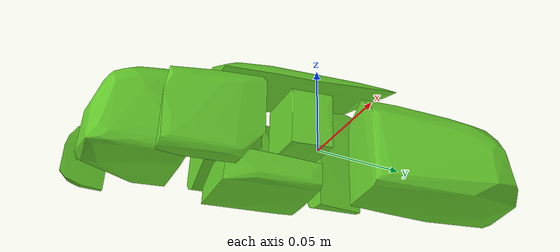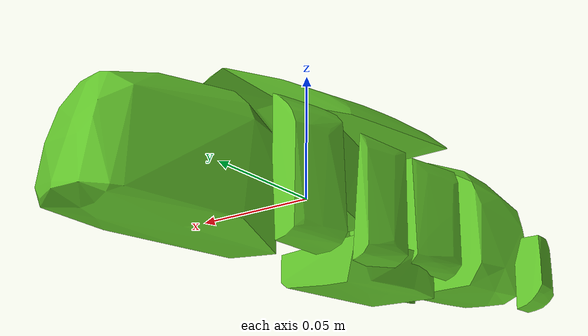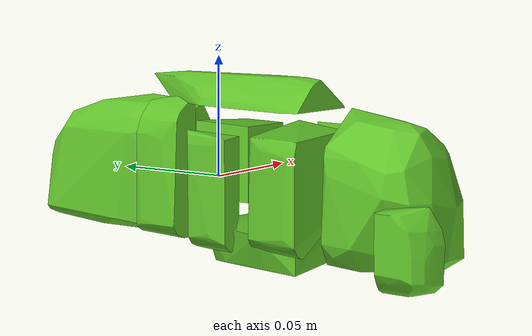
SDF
<?xml version='1.0' encoding='UTF-8'?>
<!-- This SDF was autogenerated by obj_to_drake_sdf.py -->
<sdf version="1.7">
  <model name="eraser">
    <link name="eraser">
      <inertial>
        <pose>0 0 0 0 0 0</pose>
        <mass>0.05</mass>
        <inertia>
          <ixx>0.00024843175</ixx>
          <iyy>4.436981e-05</iyy>
          <izz>0.00024641008</izz>
          <ixy>-4.5989286e-05</ixy>
          <ixz>6.4434166e-07</ixz>
          <iyz>4.6221622e-06</iyz>
        </inertia>
      </inertial>
      <visual name="convex_0">
        <pose>0 0 0 0 0 0</pose>
        <geometry>
          <mesh>
            <uri>eraser_convex_0.obj</uri>
          </mesh>
        </geometry>
        <material>
          <diffuse>0.39215686274509803 0.7843137254901961 0.17254901960784313 1</diffuse>
        </material>
      </visual>
      <collision name="convex_0_volume">
        <pose>0 0 0 0 0 0</pose>
        <geometry>
          <mesh>
            <uri>eraser_convex_0.obj</uri>
          </mesh>
        </geometry>
        <drake:proximity_properties xmlns:drake="uri:drake">
          <drake:compliant_hydroelastic/>
          <drake:hydroelastic_modulus> 3.0e7 </drake:hydroelastic_modulus>
          <drake:mesh_resolution_hint> 0.02 </drake:mesh_resolution_hint>
          <drake:hunt_crossley_dissipation>10</drake:hunt_crossley_dissipation>
          <drake:mu_dynamic>0.3</drake:mu_dynamic>
        </drake:proximity_properties>
      </collision>
      <visual name="convex_1">
        <pose>0 0 0 0 0 0</pose>
        <geometry>
          <mesh>
            <uri>eraser_convex_1.obj</uri>
          </mesh>
        </geometry>
        <material>
          <diffuse>0.39215686274509803 0.7843137254901961 0.17254901960784313 1</diffuse>
        </material>
      </visual>
      <collision name="convex_1_volume">
        <pose>0 0 0 0 0 0</pose>
        <geometry>
          <mesh>
            <uri>eraser_convex_1.obj</uri>
          </mesh>
        </geometry>
        <drake:proximity_properties xmlns:drake="uri:drake">
          <drake:compliant_hydroelastic/>
          <drake:hydroelastic_modulus> 3.0e7 </drake:hydroelastic_modulus>
          <drake:mesh_resolution_hint> 0.02 </drake:mesh_resolution_hint>
          <drake:hunt_crossley_dissipation>10</drake:hunt_crossley_dissipation>
          <drake:mu_dynamic>0.3</drake:mu_dynamic>
        </drake:proximity_properties>
      </collision>
      <visual name="convex_2">
        <pose>0 0 0 0 0 0</pose>
        <geometry>
          <mesh>
            <uri>eraser_convex_2.obj</uri>
          </mesh>
        </geometry>
        <material>
          <diffuse>0.39215686274509803 0.7843137254901961 0.17254901960784313 1</diffuse>
        </material>
      </visual>
      <collision name="convex_2_volume">
        <pose>0 0 0 0 0 0</pose>
        <geometry>
          <mesh>
            <uri>eraser_convex_2.obj</uri>
          </mesh>
        </geometry>
        <drake:proximity_properties xmlns:drake="uri:drake">
          <drake:compliant_hydroelastic/>
          <drake:hydroelastic_modulus> 3.0e7 </drake:hydroelastic_modulus>
          <drake:mesh_resolution_hint> 0.02 </drake:mesh_resolution_hint>
          <drake:hunt_crossley_dissipation>10</drake:hunt_crossley_dissipation>
          <drake:mu_dynamic>0.3</drake:mu_dynamic>
        </drake:proximity_properties>
      </collision>
      <visual name="convex_3">
        <pose>0 0 0 0 0 0</pose>
        <geometry>
          <mesh>
            <uri>eraser_convex_3.obj</uri>
          </mesh>
        </geometry>
        <material>
          <diffuse>0.39215686274509803 0.7843137254901961 0.17254901960784313 1</diffuse>
        </material>
      </visual>
      <collision name="convex_3_volume">
        <pose>0 0 0 0 0 0</pose>
        <geometry>
          <mesh>
            <uri>eraser_convex_3.obj</uri>
          </mesh>
        </geometry>
        <drake:proximity_properties xmlns:drake="uri:drake">
          <drake:compliant_hydroelastic/>
          <drake:hydroelastic_modulus> 3.0e7 </drake:hydroelastic_modulus>
          <drake:mesh_resolution_hint> 0.02 </drake:mesh_resolution_hint>
          <drake:hunt_crossley_dissipation>10</drake:hunt_crossley_dissipation>
          <drake:mu_dynamic>0.3</drake:mu_dynamic>
        </drake:proximity_properties>
      </collision>
      <visual name="convex_4">
        <pose>0 0 0 0 0 0</pose>
        <geometry>
          <mesh>
            <uri>eraser_convex_4.obj</uri>
          </mesh>
        </geometry>
        <material>
          <diffuse>0.39215686274509803 0.7843137254901961 0.17254901960784313 1</diffuse>
        </material>
      </visual>
      <collision name="convex_4_volume">
        <pose>0 0 0 0 0 0</pose>
        <geometry>
          <mesh>
            <uri>eraser_convex_4.obj</uri>
          </mesh>
        </geometry>
        <drake:proximity_properties xmlns:drake="uri:drake">
          <drake:compliant_hydroelastic/>
          <drake:hydroelastic_modulus> 3.0e7 </drake:hydroelastic_modulus>
          <drake:mesh_resolution_hint> 0.02 </drake:mesh_resolution_hint>
          <drake:hunt_crossley_dissipation>10</drake:hunt_crossley_dissipation>
          <drake:mu_dynamic>0.3</drake:mu_dynamic>
        </drake:proximity_properties>
      </collision>
      <visual name="convex_5">
        <pose>0 0 0 0 0 0</pose>
        <geometry>
          <mesh>
            <uri>eraser_convex_5.obj</uri>
          </mesh>
        </geometry>
        <material>
          <diffuse>0.39215686274509803 0.7843137254901961 0.17254901960784313 1</diffuse>
        </material>
      </visual>
      <collision name="convex_5_volume">
        <pose>0 0 0 0 0 0</pose>
        <geometry>
          <mesh>
            <uri>eraser_convex_5.obj</uri>
          </mesh>
        </geometry>
        <drake:proximity_properties xmlns:drake="uri:drake">
          <drake:compliant_hydroelastic/>
          <drake:hydroelastic_modulus> 3.0e7 </drake:hydroelastic_modulus>
          <drake:mesh_resolution_hint> 0.02 </drake:mesh_resolution_hint>
          <drake:hunt_crossley_dissipation>10</drake:hunt_crossley_dissipation>
          <drake:mu_dynamic>0.3</drake:mu_dynamic>
        </drake:proximity_properties>
      </collision>
      <visual name="convex_6">
        <pose>0 0 0 0 0 0</pose>
        <geometry>
          <mesh>
            <uri>eraser_convex_6.obj</uri>
          </mesh>
        </geometry>
        <material>
          <diffuse>0.39215686274509803 0.7843137254901961 0.17254901960784313 1</diffuse>
        </material>
      </visual>
      <collision name="convex_6_volume">
        <pose>0 0 0 0 0 0</pose>
        <geometry>
          <mesh>
            <uri>eraser_convex_6.obj</uri>
          </mesh>
        </geometry>
        <drake:proximity_properties xmlns:drake="uri:drake">
          <drake:compliant_hydroelastic/>
          <drake:hydroelastic_modulus> 3.0e7 </drake:hydroelastic_modulus>
          <drake:mesh_resolution_hint> 0.02 </drake:mesh_resolution_hint>
          <drake:hunt_crossley_dissipation>10</drake:hunt_crossley_dissipation>
          <drake:mu_dynamic>0.3</drake:mu_dynamic>
        </drake:proximity_properties>
      </collision>
      <visual name="convex_7">
        <pose>0 0 0 0 0 0</pose>
        <geometry>
          <mesh>
            <uri>eraser_convex_7.obj</uri>
          </mesh>
        </geometry>
        <material>
          <diffuse>0.39215686274509803 0.7843137254901961 0.17254901960784313 1</diffuse>
        </material>
      </visual>
      <collision name="convex_7_volume">
        <pose>0 0 0 0 0 0</pose>
        <geometry>
          <mesh>
            <uri>eraser_convex_7.obj</uri>
          </mesh>
        </geometry>
        <drake:proximity_properties xmlns:drake="uri:drake">
          <drake:compliant_hydroelastic/>
          <drake:hydroelastic_modulus> 3.0e7 </drake:hydroelastic_modulus>
          <drake:mesh_resolution_hint> 0.02 </drake:mesh_resolution_hint>
          <drake:hunt_crossley_dissipation>10</drake:hunt_crossley_dissipation>
          <drake:mu_dynamic>0.3</drake:mu_dynamic>
        </drake:proximity_properties>
      </collision>
      <visual name="convex_8">
        <pose>0 0 0 0 0 0</pose>
        <geometry>
          <mesh>
            <uri>eraser_convex_8.obj</uri>
          </mesh>
        </geometry>
        <material>
          <diffuse>0.39215686274509803 0.7843137254901961 0.17254901960784313 1</diffuse>
        </material>
      </visual>
      <collision name="convex_8_volume">
        <pose>0 0 0 0 0 0</pose>
        <geometry>
          <mesh>
            <uri>eraser_convex_8.obj</uri>
          </mesh>
        </geometry>
        <drake:proximity_properties xmlns:drake="uri:drake">
          <drake:compliant_hydroelastic/>
          <drake:hydroelastic_modulus> 3.0e7 </drake:hydroelastic_modulus>
          <drake:mesh_resolution_hint> 0.02 </drake:mesh_resolution_hint>
          <drake:hunt_crossley_dissipation>10</drake:hunt_crossley_dissipation>
          <drake:mu_dynamic>0.3</drake:mu_dynamic>
        </drake:proximity_properties>
      </collision>
      <visual name="convex_9">
        <pose>0 0 0 0 0 0</pose>
        <geometry>
          <mesh>
            <uri>eraser_convex_9.obj</uri>
          </mesh>
        </geometry>
        <material>
          <diffuse>0.39215686274509803 0.7843137254901961 0.17254901960784313 1</diffuse>
        </material>
      </visual>
      <collision name="convex_9_volume">
        <pose>0 0 0 0 0 0</pose>
        <geometry>
          <mesh>
            <uri>eraser_convex_9.obj</uri>
          </mesh>
        </geometry>
        <drake:proximity_properties xmlns:drake="uri:drake">
          <drake:compliant_hydroelastic/>
          <drake:hydroelastic_modulus> 3.0e7 </drake:hydroelastic_modulus>
          <drake:mesh_resolution_hint> 0.02 </drake:mesh_resolution_hint>
          <drake:hunt_crossley_dissipation>10</drake:hunt_crossley_dissipation>
          <drake:mu_dynamic>0.3</drake:mu_dynamic>
        </drake:proximity_properties>
      </collision>
    </link>
  </model>
</sdf>
